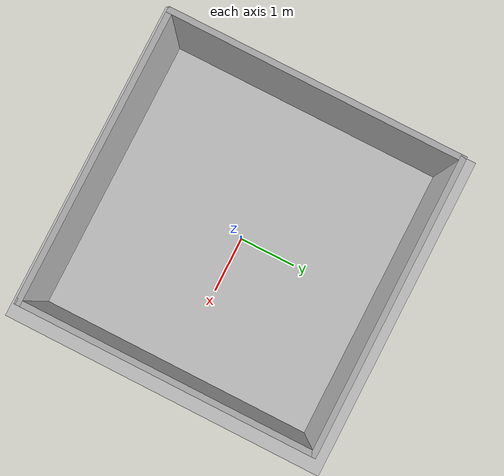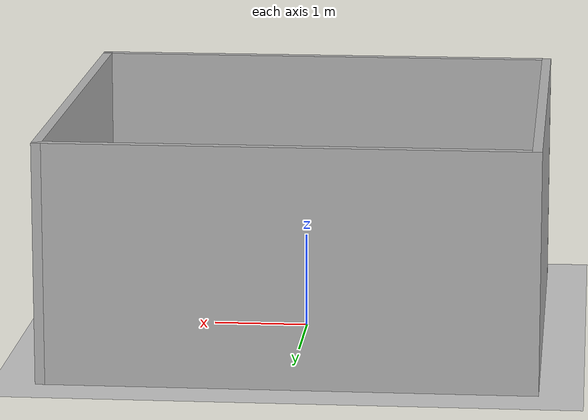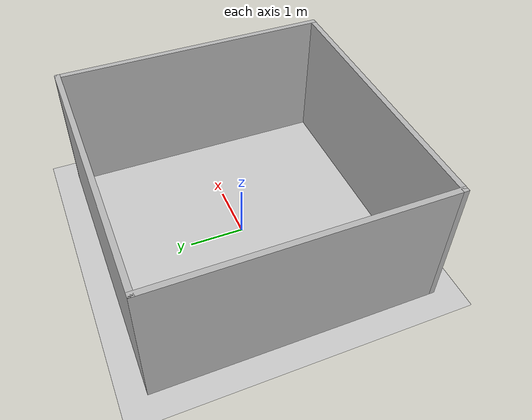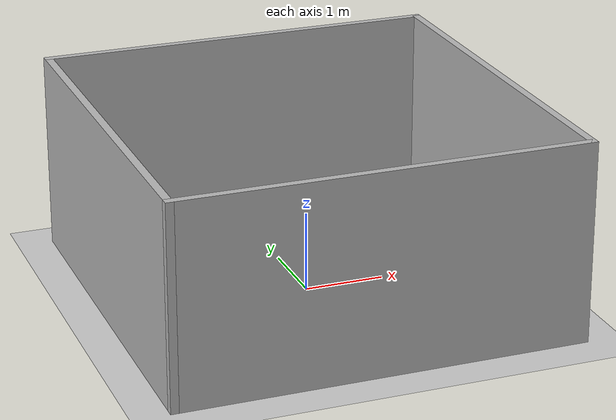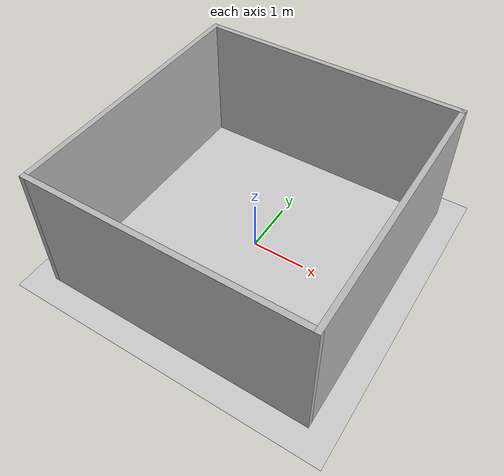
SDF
<?xml version="1.0" ?>
<sdf version="1.4">
  <world name="default">

    <include>
      <uri>model://ground_plane_textured</uri>
    </include>

    <!-- Global light source -->
    <include>
      <uri>model://sun</uri>
    </include>

    <include>
      <uri>model://simpleFourWallTextured</uri>
    </include>

    <!-- Focus camera on tall pendulum -->
    <gui fullscreen='0'>
      <camera name='user_camera'>
        <pose>-0.241862 -0.045901 11.828028 0.000000 1.570796 0.0</pose>
        <view_controller>orbit</view_controller>
      </camera>
    </gui>

  </world>
</sdf>

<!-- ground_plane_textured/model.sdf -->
<sdf version="1.5">
  <model name="ground_plane_textured">
    <static>true</static>
    <link name="link">
      <collision name="collision">
        <geometry>
          <plane>
            <normal>0 0 1</normal>
            <size>6 6</size>
          </plane>
        </geometry>
        <surface>
          <contact>
             <collide_bitmask>0xffff</collide_bitmask>
          </contact>
          <friction>
            <ode>
              <mu>100</mu>
              <mu2>50</mu2>
            </ode>
          </friction>
        </surface>
      </collision>
      <visual name="visual">
        <cast_shadows>false</cast_shadows>
        <geometry>
          <plane>
            <normal>0 0 1</normal>
            <size>6 6</size>
          </plane>
        </geometry>

        <material>
          <script>
            <uri>model://ground_plane_textured/materials/scripts/byu.material</uri>
            <name>BYU/ground</name>
          </script>
        </material>

      </visual>
    </link>
  </model>
</sdf>

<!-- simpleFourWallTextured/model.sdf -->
<sdf version='1.6'>
  <model name='simpleFourWallTextured'>
    <pose frame=''>0 0 0 0 -0 0</pose>
    <link name='Wall_12'>
      <collision name='Wall_12_Collision'>
        <geometry>
          <box>
            <size>5.1 0.1 2.5</size>
          </box>
        </geometry>
        <pose frame=''>0 0 1.25 0 -0 0</pose>
      </collision>
      <visual name='Wall_12_Visual'>
        <pose frame=''>0 0 1.25 0 -0 0</pose>
        <geometry>
          <box>
            <size>5.1 0.1 2.5</size>
          </box>
        </geometry>

        <material>
          <script>
            <uri>model://simpleFourWallTextured/materials/scripts/cardboard.material</uri>
            <name>cardboard</name>
          </script>
        </material>

        <meta>
          <layer>0</layer>
        </meta>
      </visual>
      <pose frame=''>2.5 0 0 0 -0 -1.5708</pose>
    </link>
    <link name='Wall_14'>
      <collision name='Wall_14_Collision'>
        <geometry>
          <box>
            <size>5.1 0.1 2.5</size>
          </box>
        </geometry>
        <pose frame=''>0 0 1.25 0 -0 0</pose>
      </collision>
      <visual name='Wall_14_Visual'>
        <pose frame=''>0 0 1.25 0 -0 0</pose>
        <geometry>
          <box>
            <size>5.1 0.1 2.5</size>
          </box>
        </geometry>
        <material>
          <script>
            <uri>model://simpleFourWallTextured/materials/scripts/cardboard2.material</uri>
            <name>cardboard2</name>
          </script>
        </material>
        <meta>
          <layer>0</layer>
        </meta>
      </visual>
      <pose frame=''>0 -2.5 0 0 -0 3.14159</pose>
    </link>
    <link name='Wall_16'>
      <collision name='Wall_16_Collision'>
        <geometry>
          <box>
            <size>5.1 0.1 2.5</size>
          </box>
        </geometry>
        <pose frame=''>0 0 1.25 0 -0 0</pose>
      </collision>
      <visual name='Wall_16_Visual'>
        <pose frame=''>0 0 1.25 0 -0 0</pose>
        <geometry>
          <box>
            <size>5.1 0.1 2.5</size>
          </box>
        </geometry>
        <material>
          <script>
            <uri>model://simpleFourWallTextured/materials/scripts/cardboard3.material</uri>
            <name>cardboard3</name>
          </script>
        </material>
        <meta>
          <layer>0</layer>
        </meta>
      </visual>
      <pose frame=''>-2.5 0 0 0 -0 1.5708</pose>
    </link>
    <link name='Wall_8'>
      <collision name='Wall_8_Collision'>
        <geometry>
          <box>
            <size>5.1 0.1 2.5</size>
          </box>
        </geometry>
        <pose frame=''>0 0 1.25 0 -0 0</pose>
      </collision>
      <visual name='Wall_8_Visual'>
        <pose frame=''>0 0 1.25 0 -0 0</pose>
        <geometry>
          <box>
            <size>5.1 0.1 2.5</size>
          </box>
        </geometry>
        <material>
          <script>
            <uri>model://simpleFourWallTextured/materials/scripts/cardboard4.material</uri>
            <name>cardboard4</name>
          </script>
        </material>
        <meta>
          <layer>0</layer>
        </meta>
      </visual>
      <pose frame=''>0 2.5 0 0 -0 3.14159</pose>
    </link>
    <static>1</static>
  </model>
</sdf>
